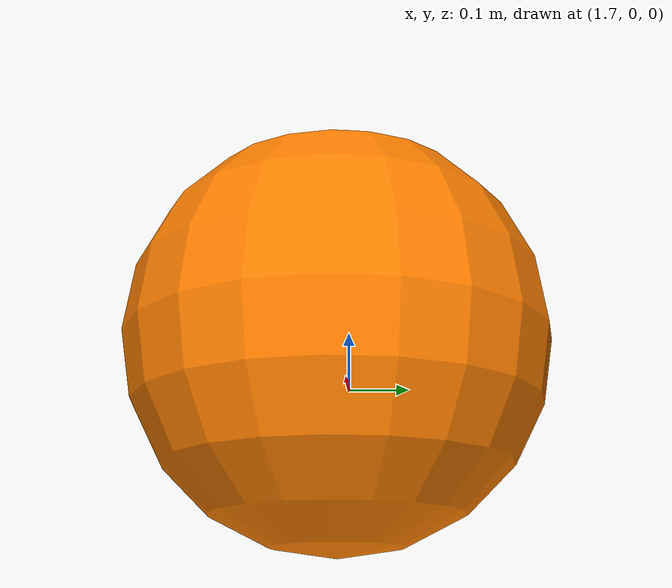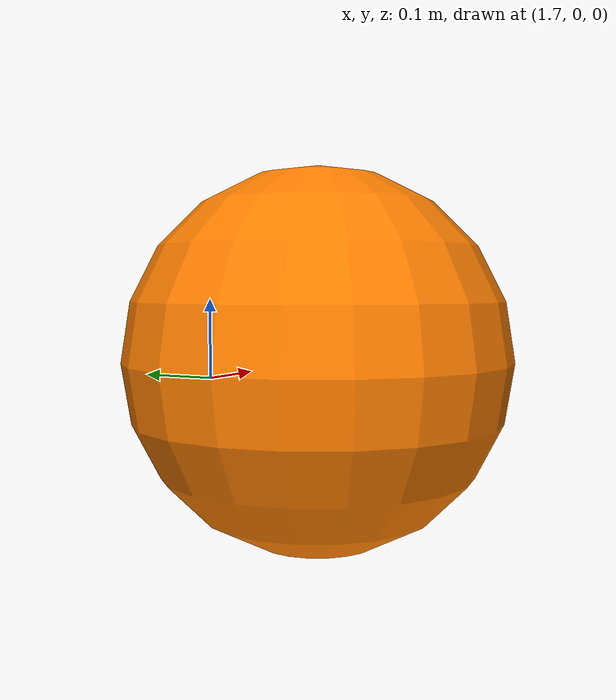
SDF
<?xml version="1.0" ?>
<sdf version="1.7">
  <model name="fire_models">
    <pose>2 0 0 0 0 0</pose>
    <link name="fire_link">
      <visual name="fire_visual">
        <geometry>
          <sphere><radius>0.3</radius></sphere>
        </geometry>
        <material>
          <ambient>1 0.2 0 1</ambient>
          <diffuse>1 0.5 0 1</diffuse>
        </material>
      </visual>
    </link>
  </model>
</sdf>
